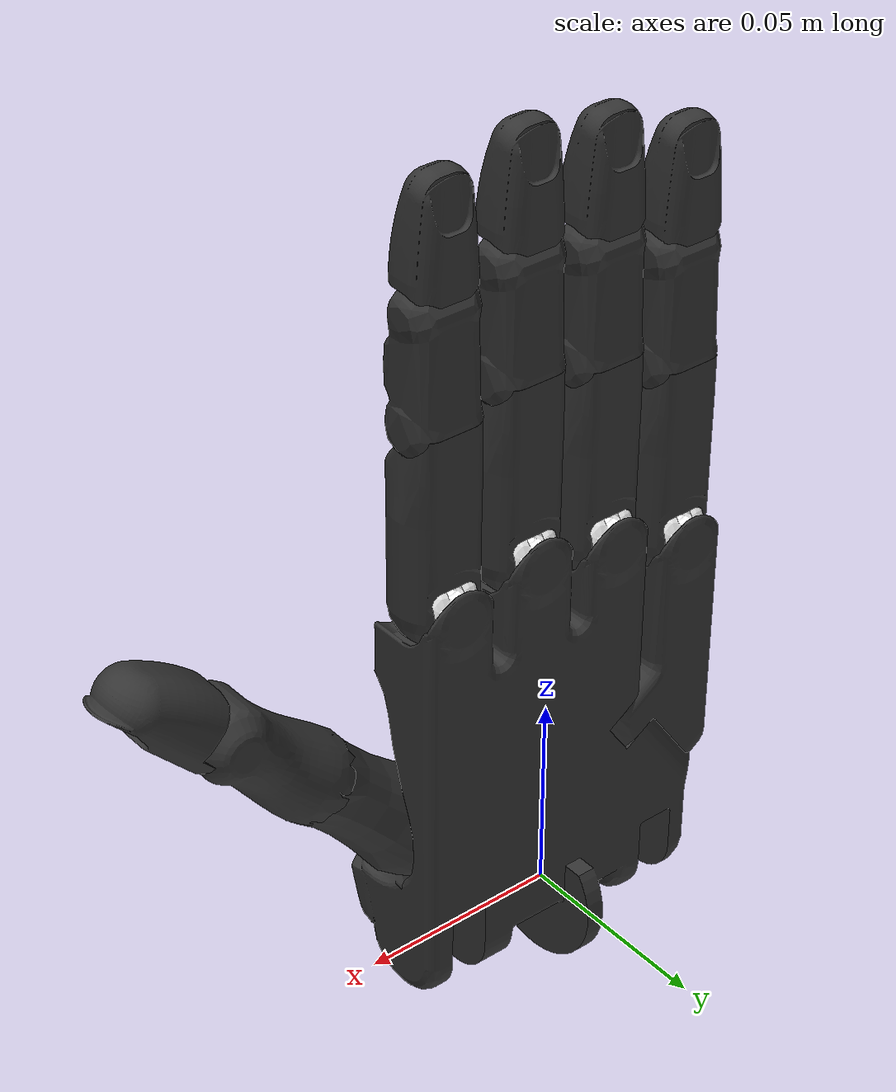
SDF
<sdf version='1.11'>
  <model name='rh_palm'>
    <link name='rh_palm'>
      <inertial>
        <pose>0.0021985926981499858 -0.00091810055905640667 0.033778046718497323 0 0 0</pose>
        <mass>0.50768530368804932</mass>
        <inertia>
          <ixx>0.0005297141669815264</ixx>
          <ixy>1.5709140684531199e-06</ixy>
          <ixz>-1.4715698817304041e-05</ixz>
          <iyy>0.00077459366012883556</iyy>
          <iyz>-1.258002557937628e-05</iyz>
          <izz>0.00029222616847752152</izz>
        </inertia>
      </inertial>
      <collision name='rh_palm_fixed_joint_lump__Geom_1_collision'>
        <pose>0.01099999994039536 0.008500000461935997 0.037999998778104782 0 0 0</pose>
        <geometry>
          <box>
            <size>0.061999998986721039 0.0070000002160668373 0.097999997437000275</size>
          </box>
        </geometry>
      </collision>
      <collision name='rh_palm_fixed_joint_lump__Geom_2_collision_1'>
        <pose>-0.002000000094994903 -0.0035000001080334191 0.037999998778104782 0 0 0</pose>
        <geometry>
          <box>
            <size>0.035999998450279243 0.017000000923871991 0.097999997437000275</size>
          </box>
        </geometry>
      </collision>
      <collision name='rh_palm_fixed_joint_lump__Geom_3_collision_2'>
        <pose>0.02899999916553497 -0.0035000001080334191 0.082000002264976501 0 0 0</pose>
        <geometry>
          <box>
            <size>0.0260000005364418 0.017000000923871991 0.0099999997764825821</size>
          </box>
        </geometry>
      </collision>
      <collision name='rh_palm_fixed_joint_lump__Geom_4_collision_3'>
        <pose>0.026499999687075611 -0.0010000000474974511 0.070000000298023224 0.19999998807907099 -3.2558588720921218e-08 0.25000017881393433</pose>
        <geometry>
          <box>
            <size>0.0260000005364418 0.014000000432133669 0.017999999225139621</size>
          </box>
        </geometry>
      </collision>
      <collision name='rh_palm_fixed_joint_lump__Geom_5_collision_4'>
        <pose>0.031500000506639481 -0.008500000461935997 0.0010000000474974511 0 0 0</pose>
        <geometry>
          <box>
            <size>0.020999999716877941 0.02700000070035458 0.02400000020861626</size>
          </box>
        </geometry>
      </collision>
      <collision name='rh_palm_fixed_joint_lump__Geom_6_collision_5'>
        <pose>0.01250000018626451 -0.01499999966472387 0.0040000001899898052 0 0 -0.48000070452690119</pose>
        <geometry>
          <box>
            <size>0.02199999988079071 0.004999999888241291 0.02999999932944775</size>
          </box>
        </geometry>
      </collision>
      <collision name='rh_palm_fixed_joint_lump__Geom_7_collision_6'>
        <pose>0.01099999994039536 0 0.089000001549720764 0 0 0</pose>
        <geometry>
          <box>
            <size>0.017999999225139621 0.02400000020861626 0.0040000001899898052</size>
          </box>
        </geometry>
      </collision>
      <collision name='rh_palm_fixed_joint_lump__Geom_8_collision_7'>
        <pose>-0.02999999932944775 0 0.008999999612569809 0 0 0</pose>
        <geometry>
          <box>
            <size>0.019999999552965161 0.02400000020861626 0.039999999105930328</size>
          </box>
        </geometry>
      </collision>
      <visual name='rh_palm_fixed_joint_lump__Geom_0_visual'>
        <pose>0.0053744451142847538 -0.0022442906629294161 0.032012943178415298 0.21004581451416021 0.083132773637771634 1.5503211021423342</pose>
        <geometry>
          <mesh>
            <scale>1 1 1</scale>
            <uri>./assets/obj/r_palm.obj</uri>
          </mesh>
        </geometry>
        <material>
          <diffuse>0.204437509 0.204437509 0.204437509 1</diffuse>
          <ambient>0.204437509 0.204437509 0.204437509 1</ambient>
        </material>
      </visual>
    </link>
    <joint name='rh_FFJ4' type='revolute'>
      <pose relative_to='rh_palm'>0.032999999821186073 0 0.094999998807907104 0 0 0</pose>
      <parent>rh_palm</parent>
      <child>rh_ffknuckle</child>
      <axis>
        <xyz>0 -1 0</xyz>
        <limit>
          <lower>-0.34906598925590521</lower>
          <upper>0.34906598925590521</upper>
          <effort>1000</effort>
          <velocity>1000</velocity>
        </limit>
        <dynamics>
          <spring_reference>0</spring_reference>
          <spring_stiffness>0</spring_stiffness>
        </dynamics>
      </axis>
    </joint>
    <link name='rh_ffknuckle'>
      <pose relative_to='rh_FFJ4'>0 0 0 0 0 0</pose>
      <inertial>
        <pose>0 0 0 0 0 0</pose>
        <mass>0.0080000003799796104</mass>
        <inertia>
          <ixx>2.6000000730164169e-07</ixx>
          <ixy>0</ixy>
          <ixz>0</ixz>
          <iyy>2.6000000730164169e-07</iyy>
          <iyz>0</iyz>
          <izz>3.1999999805520929e-07</izz>
        </inertia>
      </inertial>
      <collision name='rh_ffknuckle_fixed_joint_lump__Geom_11_collision'>
        <pose>0 0 0 0 1.5707963267948966 0</pose>
        <geometry>
          <cylinder>
            <length>0.017999999225139621</length>
            <radius>0.008999999612569809</radius>
          </cylinder>
        </geometry>
      </collision>
      <visual name='rh_ffknuckle_fixed_joint_lump__Geom_10_visual'>
        <pose>-8.0159534263657406e-06 0.00028383333119563758 0.0003141145571134984 0.47617125511169428 0 0</pose>
        <geometry>
          <mesh>
            <scale>1 1 1</scale>
            <uri>./assets/obj/f_knuckle.obj</uri>
          </mesh>
        </geometry>
        <material>
          <diffuse>1 1 1 1</diffuse>
          <ambient>1 1 1 1</ambient>
        </material>
      </visual>
    </link>
    <joint name='rh_FFJ3' type='revolute'>
      <pose relative_to='rh_ffknuckle'>0 0 0 0 0 0</pose>
      <parent>rh_ffknuckle</parent>
      <child>rh_ffproximal</child>
      <axis>
        <xyz>1 0 0</xyz>
        <limit>
          <lower>-0.26179900765419012</lower>
          <upper>1.5708000659942629</upper>
          <effort>1000</effort>
          <velocity>1000</velocity>
        </limit>
        <dynamics>
          <spring_reference>0</spring_reference>
          <spring_stiffness>0</spring_stiffness>
        </dynamics>
      </axis>
    </joint>
    <link name='rh_ffproximal'>
      <pose relative_to='rh_FFJ3'>0 0 0 0 0 0</pose>
      <inertial>
        <pose>0 0 0.022500000894069672 0 0 0</pose>
        <mass>0.02999999932944775</mass>
        <inertia>
          <ixx>9.8000000434694812e-06</ixx>
          <ixy>0</ixy>
          <ixz>0</ixz>
          <iyy>9.9999997473787516e-06</iyy>
          <iyz>0</iyz>
          <izz>1.799999949980702e-06</izz>
        </inertia>
      </inertial>
      <collision name='rh_ffproximal_fixed_joint_lump__Geom_13_collision'>
        <pose>0 0 0.02500000037252903 0 0 0</pose>
        <geometry>
          <cylinder>
            <length>0.039999999105930328</length>
            <radius>0.008999999612569809</radius>
          </cylinder>
        </geometry>
      </collision>
      <visual name='rh_ffproximal_fixed_joint_lump__Geom_12_visual'>
        <pose>1.2104840152460379e-06 9.7617894425638951e-06 0.022880652919411659 -8.674230925925565e-19 0.011893937364220619 1.5707963705062868</pose>
        <geometry>
          <mesh>
            <scale>1 1 1</scale>
            <uri>./assets/obj/f_proximal.obj</uri>
          </mesh>
        </geometry>
        <material>
          <diffuse>0.204437509 0.204437509 0.204437509 1</diffuse>
          <ambient>0.204437509 0.204437509 0.204437509 1</ambient>
        </material>
      </visual>
    </link>
    <joint name='rh_FFJ2' type='revolute'>
      <pose relative_to='rh_ffproximal'>0 0 0.045000001788139343 0 0 0</pose>
      <parent>rh_ffproximal</parent>
      <child>rh_ffmiddle</child>
      <axis>
        <xyz>1 0 0</xyz>
        <limit>
          <lower>0</lower>
          <upper>1.5708000659942629</upper>
          <effort>1000</effort>
          <velocity>1000</velocity>
        </limit>
        <dynamics>
          <spring_reference>0</spring_reference>
          <spring_stiffness>0</spring_stiffness>
        </dynamics>
      </axis>
    </joint>
    <link name='rh_ffmiddle'>
      <pose relative_to='rh_FFJ2'>0 0 0 0 0 0</pose>
      <inertial>
        <pose>0 0 0.01250000018626451 0 0 0</pose>
        <mass>0.017000000923871991</mass>
        <inertia>
          <ixx>2.600000016172999e-06</ixx>
          <ixy>0</ixy>
          <ixz>0</ixz>
          <iyy>2.7000000955013088e-06</iyy>
          <iyz>0</iyz>
          <izz>8.7000000803527655e-07</izz>
        </inertia>
      </inertial>
      <collision name='rh_ffmiddle_fixed_joint_lump__Geom_15_collision'>
        <pose>0 0 0.01250000018626451 0 0 0</pose>
        <geometry>
          <cylinder>
            <length>0.02500000037252903</length>
            <radius>0.008999999612569809</radius>
          </cylinder>
        </geometry>
      </collision>
      <visual name='rh_ffmiddle_fixed_joint_lump__Geom_14_visual'>
        <pose>-2.7197006602364131e-06 -3.2192867365665727e-05 0.011511409655213359 0 0 1.5707963705062871</pose>
        <geometry>
          <mesh>
            <scale>1 1 1</scale>
            <uri>./assets/obj/f_middle.obj</uri>
          </mesh>
        </geometry>
        <material>
          <diffuse>0.204437509 0.204437509 0.204437509 1</diffuse>
          <ambient>0.204437509 0.204437509 0.204437509 1</ambient>
        </material>
      </visual>
    </link>
    <joint name='rh_FFJ1' type='revolute'>
      <pose relative_to='rh_ffmiddle'>0 0 0.02500000037252903 0 0 0</pose>
      <parent>rh_ffmiddle</parent>
      <child>rh_ffdistal</child>
      <axis>
        <xyz>1 0 0</xyz>
        <limit>
          <lower>0</lower>
          <upper>1.5708000659942629</upper>
          <effort>1000</effort>
          <velocity>1000</velocity>
        </limit>
        <dynamics>
          <spring_reference>0</spring_reference>
          <spring_stiffness>0</spring_stiffness>
        </dynamics>
      </axis>
    </joint>
    <link name='rh_ffdistal'>
      <pose relative_to='rh_FFJ1'>0 0 0 0 0 0</pose>
      <inertial>
        <pose>0 0 0.0130768995732069 0 0 0</pose>
        <mass>0.0130000002682209</mass>
        <inertia>
          <ixx>1.120920046560059e-06</ixx>
          <ixy>0</ixy>
          <ixz>0</ixz>
          <iyy>1.2809199461116801e-06</iyy>
          <iyz>0</iyz>
          <izz>5.3000002253611456e-07</izz>
        </inertia>
      </inertial>
      <collision name='rh_ffdistal_fixed_joint_lump__Geom_17_collision'>
        <pose>-2.3984401195775721e-05 0.00042073254007846122 0.01764647476375103 0 0 1.5707963705062871</pose>
        <geometry>
          <mesh>
            <scale>1 1 1</scale>
            <uri>./assets/stl/f_distal_pst.stl</uri>
          </mesh>
        </geometry>
      </collision>
      <visual name='rh_ffdistal_fixed_joint_lump__Geom_16_visual'>
        <pose>-2.3984401195775721e-05 0.00042073254007846122 0.01764647476375103 0 0 1.5707963705062871</pose>
        <geometry>
          <mesh>
            <scale>1 1 1</scale>
            <uri>./assets/obj/f_distal_pst.obj</uri>
          </mesh>
        </geometry>
        <material>
          <diffuse>0.204437509 0.204437509 0.204437509 1</diffuse>
          <ambient>0.204437509 0.204437509 0.204437509 1</ambient>
        </material>
      </visual>
    </link>
    <joint name='rh_LFJ5' type='revolute'>
      <pose relative_to='rh_palm'>-0.032999999821186073 0 0.020710000768303871 0 0 0</pose>
      <parent>rh_palm</parent>
      <child>rh_lfmetacarpal</child>
      <axis>
        <xyz>0.57357615232467651 0 0.81915223598480225</xyz>
        <limit>
          <lower>0</lower>
          <upper>0.78539800643920898</upper>
          <effort>1000</effort>
          <velocity>1000</velocity>
        </limit>
        <dynamics>
          <spring_reference>0</spring_reference>
          <spring_stiffness>0</spring_stiffness>
        </dynamics>
      </axis>
    </joint>
    <link name='rh_lfmetacarpal'>
      <pose relative_to='rh_LFJ5'>0 0 0 0 0 0</pose>
      <inertial>
        <pose>0 0 0.039999999105930328 0 0 0</pose>
        <mass>0.02999999932944775</mass>
        <inertia>
          <ixx>1.450000036129495e-05</ixx>
          <ixy>0</ixy>
          <ixz>0</ixz>
          <iyy>1.6379999578930441e-05</iyy>
          <iyz>0</iyz>
          <izz>4.2719998418760952e-06</izz>
        </inertia>
      </inertial>
      <collision name='rh_lfmetacarpal_fixed_joint_lump__Geom_35_collision'>
        <pose>0.002000000094994903 0 0.032999999821186073 0 0 0</pose>
        <geometry>
          <box>
            <size>0.02199999988079071 0.02400000020861626 0.05000000074505806</size>
          </box>
        </geometry>
      </collision>
      <visual name='rh_lfmetacarpal_fixed_joint_lump__Geom_34_visual'>
        <pose>0.0024777483195066452 0.00066233589313924313 0.036479774862527847 -0.23058989644050601 0.039690095931291539 1.549545049667358</pose>
        <geometry>
          <mesh>
            <scale>1 1 1</scale>
            <uri>./assets/obj/lf_metacarpal.obj</uri>
          </mesh>
        </geometry>
        <material>
          <diffuse>0.204437509 0.204437509 0.204437509 1</diffuse>
          <ambient>0.204437509 0.204437509 0.204437509 1</ambient>
        </material>
      </visual>
    </link>
    <joint name='rh_LFJ4' type='revolute'>
      <pose relative_to='rh_lfmetacarpal'>0 0 0.065789997577667236 0 0 0</pose>
      <parent>rh_lfmetacarpal</parent>
      <child>rh_lfknuckle</child>
      <axis>
        <xyz>0 1 0</xyz>
        <limit>
          <lower>-0.34906598925590521</lower>
          <upper>0.34906598925590521</upper>
          <effort>1000</effort>
          <velocity>1000</velocity>
        </limit>
        <dynamics>
          <spring_reference>0</spring_reference>
          <spring_stiffness>0</spring_stiffness>
        </dynamics>
      </axis>
    </joint>
    <link name='rh_lfknuckle'>
      <pose relative_to='rh_LFJ4'>0 0 0 0 0 0</pose>
      <inertial>
        <pose>0 0 0 0 0 0</pose>
        <mass>0.0080000003799796104</mass>
        <inertia>
          <ixx>2.6000000730164169e-07</ixx>
          <ixy>0</ixy>
          <ixz>0</ixz>
          <iyy>2.6000000730164169e-07</iyy>
          <iyz>0</iyz>
          <izz>3.1999999805520929e-07</izz>
        </inertia>
      </inertial>
      <collision name='rh_lfknuckle_fixed_joint_lump__Geom_37_collision'>
        <pose>0 0 0 0 1.5707963267948966 0</pose>
        <geometry>
          <cylinder>
            <length>0.017999999225139621</length>
            <radius>0.008999999612569809</radius>
          </cylinder>
        </geometry>
      </collision>
      <visual name='rh_lfknuckle_fixed_joint_lump__Geom_36_visual'>
        <pose>-8.0159534263657406e-06 0.00028383333119563758 0.0003141145571134984 0.47617125511169428 0 0</pose>
        <geometry>
          <mesh>
            <scale>1 1 1</scale>
            <uri>./assets/obj/f_knuckle.obj</uri>
          </mesh>
        </geometry>
        <material>
          <diffuse>1 1 1 1</diffuse>
          <ambient>1 1 1 1</ambient>
        </material>
      </visual>
    </link>
    <joint name='rh_LFJ3' type='revolute'>
      <pose relative_to='rh_lfknuckle'>0 0 0 0 0 0</pose>
      <parent>rh_lfknuckle</parent>
      <child>rh_lfproximal</child>
      <axis>
        <xyz>1 0 0</xyz>
        <limit>
          <lower>-0.26179900765419012</lower>
          <upper>1.5708000659942629</upper>
          <effort>1000</effort>
          <velocity>1000</velocity>
        </limit>
        <dynamics>
          <spring_reference>0</spring_reference>
          <spring_stiffness>0</spring_stiffness>
        </dynamics>
      </axis>
    </joint>
    <link name='rh_lfproximal'>
      <pose relative_to='rh_LFJ3'>0 0 0 0 0 0</pose>
      <inertial>
        <pose>0 0 0.022500000894069672 0 0 0</pose>
        <mass>0.02999999932944775</mass>
        <inertia>
          <ixx>9.8000000434694812e-06</ixx>
          <ixy>0</ixy>
          <ixz>0</ixz>
          <iyy>9.9999997473787516e-06</iyy>
          <iyz>0</iyz>
          <izz>1.799999949980702e-06</izz>
        </inertia>
      </inertial>
      <collision name='rh_lfproximal_fixed_joint_lump__Geom_39_collision'>
        <pose>0 0 0.02500000037252903 0 0 0</pose>
        <geometry>
          <cylinder>
            <length>0.039999999105930328</length>
            <radius>0.008999999612569809</radius>
          </cylinder>
        </geometry>
      </collision>
      <visual name='rh_lfproximal_fixed_joint_lump__Geom_38_visual'>
        <pose>1.2104840152460379e-06 9.7617894425638951e-06 0.022880652919411659 -8.674230925925565e-19 0.011893937364220619 1.5707963705062868</pose>
        <geometry>
          <mesh>
            <scale>1 1 1</scale>
            <uri>./assets/obj/f_proximal.obj</uri>
          </mesh>
        </geometry>
        <material>
          <diffuse>0.204437509 0.204437509 0.204437509 1</diffuse>
          <ambient>0.204437509 0.204437509 0.204437509 1</ambient>
        </material>
      </visual>
    </link>
    <joint name='rh_LFJ2' type='revolute'>
      <pose relative_to='rh_lfproximal'>0 0 0.045000001788139343 0 0 0</pose>
      <parent>rh_lfproximal</parent>
      <child>rh_lfmiddle</child>
      <axis>
        <xyz>1 0 0</xyz>
        <limit>
          <lower>0</lower>
          <upper>1.5708000659942629</upper>
          <effort>1000</effort>
          <velocity>1000</velocity>
        </limit>
        <dynamics>
          <spring_reference>0</spring_reference>
          <spring_stiffness>0</spring_stiffness>
        </dynamics>
      </axis>
    </joint>
    <link name='rh_lfmiddle'>
      <pose relative_to='rh_LFJ2'>0 0 0 0 0 0</pose>
      <inertial>
        <pose>0 0 0.01250000018626451 0 0 0</pose>
        <mass>0.017000000923871991</mass>
        <inertia>
          <ixx>2.600000016172999e-06</ixx>
          <ixy>0</ixy>
          <ixz>0</ixz>
          <iyy>2.7000000955013088e-06</iyy>
          <iyz>0</iyz>
          <izz>8.7000000803527655e-07</izz>
        </inertia>
      </inertial>
      <collision name='rh_lfmiddle_fixed_joint_lump__Geom_41_collision'>
        <pose>0 0 0.01250000018626451 0 0 0</pose>
        <geometry>
          <cylinder>
            <length>0.02500000037252903</length>
            <radius>0.008999999612569809</radius>
          </cylinder>
        </geometry>
      </collision>
      <visual name='rh_lfmiddle_fixed_joint_lump__Geom_40_visual'>
        <pose>-2.7197006602364131e-06 -3.2192867365665727e-05 0.011511409655213359 0 0 1.5707963705062871</pose>
        <geometry>
          <mesh>
            <scale>1 1 1</scale>
            <uri>./assets/obj/f_middle.obj</uri>
          </mesh>
        </geometry>
        <material>
          <diffuse>0.204437509 0.204437509 0.204437509 1</diffuse>
          <ambient>0.204437509 0.204437509 0.204437509 1</ambient>
        </material>
      </visual>
    </link>
    <joint name='rh_LFJ1' type='revolute'>
      <pose relative_to='rh_lfmiddle'>0 0 0.02500000037252903 0 0 0</pose>
      <parent>rh_lfmiddle</parent>
      <child>rh_lfdistal</child>
      <axis>
        <xyz>1 0 0</xyz>
        <limit>
          <lower>0</lower>
          <upper>1.5708000659942629</upper>
          <effort>1000</effort>
          <velocity>1000</velocity>
        </limit>
        <dynamics>
          <spring_reference>0</spring_reference>
          <spring_stiffness>0</spring_stiffness>
        </dynamics>
      </axis>
    </joint>
    <link name='rh_lfdistal'>
      <pose relative_to='rh_LFJ1'>0 0 0 0 0 0</pose>
      <inertial>
        <pose>0 0 0.0130768995732069 0 0 0</pose>
        <mass>0.0130000002682209</mass>
        <inertia>
          <ixx>1.120920046560059e-06</ixx>
          <ixy>0</ixy>
          <ixz>0</ixz>
          <iyy>1.2809199461116801e-06</iyy>
          <iyz>0</iyz>
          <izz>5.3000002253611456e-07</izz>
        </inertia>
      </inertial>
      <collision name='rh_lfdistal_fixed_joint_lump__Geom_43_collision'>
        <pose>-2.3984401195775721e-05 0.00042073254007846122 0.01764647476375103 0 0 1.5707963705062871</pose>
        <geometry>
          <mesh>
            <scale>1 1 1</scale>
            <uri>./assets/stl/f_distal_pst.stl</uri>
          </mesh>
        </geometry>
      </collision>
      <visual name='rh_lfdistal_fixed_joint_lump__Geom_42_visual'>
        <pose>-2.3984401195775721e-05 0.00042073254007846122 0.01764647476375103 0 0 1.5707963705062871</pose>
        <geometry>
          <mesh>
            <scale>1 1 1</scale>
            <uri>./assets/obj/f_distal_pst.obj</uri>
          </mesh>
        </geometry>
        <material>
          <diffuse>0.204437509 0.204437509 0.204437509 1</diffuse>
          <ambient>0.204437509 0.204437509 0.204437509 1</ambient>
        </material>
      </visual>
    </link>
    <joint name='rh_MFJ4' type='revolute'>
      <pose relative_to='rh_palm'>0.01099999994039536 0 0.098999999463558197 0 0 0</pose>
      <parent>rh_palm</parent>
      <child>rh_mfknuckle</child>
      <axis>
        <xyz>0 -1 0</xyz>
        <limit>
          <lower>-0.34906598925590521</lower>
          <upper>0.34906598925590521</upper>
          <effort>1000</effort>
          <velocity>1000</velocity>
        </limit>
        <dynamics>
          <spring_reference>0</spring_reference>
          <spring_stiffness>0</spring_stiffness>
        </dynamics>
      </axis>
    </joint>
    <link name='rh_mfknuckle'>
      <pose relative_to='rh_MFJ4'>0 0 0 0 0 0</pose>
      <inertial>
        <pose>0 0 0 0 0 0</pose>
        <mass>0.0080000003799796104</mass>
        <inertia>
          <ixx>2.6000000730164169e-07</ixx>
          <ixy>0</ixy>
          <ixz>0</ixz>
          <iyy>2.6000000730164169e-07</iyy>
          <iyz>0</iyz>
          <izz>3.1999999805520929e-07</izz>
        </inertia>
      </inertial>
      <collision name='rh_mfknuckle_fixed_joint_lump__Geom_19_collision'>
        <pose>0 0 0 0 1.5707963267948966 0</pose>
        <geometry>
          <cylinder>
            <length>0.017999999225139621</length>
            <radius>0.008999999612569809</radius>
          </cylinder>
        </geometry>
      </collision>
      <visual name='rh_mfknuckle_fixed_joint_lump__Geom_18_visual'>
        <pose>-8.0159534263657406e-06 0.00028383333119563758 0.0003141145571134984 0.47617125511169428 0 0</pose>
        <geometry>
          <mesh>
            <scale>1 1 1</scale>
            <uri>./assets/obj/f_knuckle.obj</uri>
          </mesh>
        </geometry>
        <material>
          <diffuse>1 1 1 1</diffuse>
          <ambient>1 1 1 1</ambient>
        </material>
      </visual>
    </link>
    <joint name='rh_MFJ3' type='revolute'>
      <pose relative_to='rh_mfknuckle'>0 0 0 0 0 0</pose>
      <parent>rh_mfknuckle</parent>
      <child>rh_mfproximal</child>
      <axis>
        <xyz>1 0 0</xyz>
        <limit>
          <lower>-0.26179900765419012</lower>
          <upper>1.5708000659942629</upper>
          <effort>1000</effort>
          <velocity>1000</velocity>
        </limit>
        <dynamics>
          <spring_reference>0</spring_reference>
          <spring_stiffness>0</spring_stiffness>
        </dynamics>
      </axis>
    </joint>
    <link name='rh_mfproximal'>
      <pose relative_to='rh_MFJ3'>0 0 0 0 0 0</pose>
      <inertial>
        <pose>0 0 0.022500000894069672 0 0 0</pose>
        <mass>0.02999999932944775</mass>
        <inertia>
          <ixx>9.8000000434694812e-06</ixx>
          <ixy>0</ixy>
          <ixz>0</ixz>
          <iyy>9.9999997473787516e-06</iyy>
          <iyz>0</iyz>
          <izz>1.799999949980702e-06</izz>
        </inertia>
      </inertial>
      <collision name='rh_mfproximal_fixed_joint_lump__Geom_21_collision'>
        <pose>0 0 0.02500000037252903 0 0 0</pose>
        <geometry>
          <cylinder>
            <length>0.039999999105930328</length>
            <radius>0.008999999612569809</radius>
          </cylinder>
        </geometry>
      </collision>
      <visual name='rh_mfproximal_fixed_joint_lump__Geom_20_visual'>
        <pose>1.2104840152460379e-06 9.7617894425638951e-06 0.022880652919411659 -8.674230925925565e-19 0.011893937364220619 1.5707963705062868</pose>
        <geometry>
          <mesh>
            <scale>1 1 1</scale>
            <uri>./assets/obj/f_proximal.obj</uri>
          </mesh>
        </geometry>
        <material>
          <diffuse>0.204437509 0.204437509 0.204437509 1</diffuse>
          <ambient>0.204437509 0.204437509 0.204437509 1</ambient>
        </material>
      </visual>
    </link>
    <joint name='rh_MFJ2' type='revolute'>
      <pose relative_to='rh_mfproximal'>0 0 0.045000001788139343 0 0 0</pose>
      <parent>rh_mfproximal</parent>
      <child>rh_mfmiddle</child>
      <axis>
        <xyz>1 0 0</xyz>
        <limit>
          <lower>0</lower>
          <upper>1.5708000659942629</upper>
          <effort>1000</effort>
          <velocity>1000</velocity>
        </limit>
        <dynamics>
          <spring_reference>0</spring_reference>
          <spring_stiffness>0</spring_stiffness>
        </dynamics>
      </axis>
    </joint>
    <link name='rh_mfmiddle'>
      <pose relative_to='rh_MFJ2'>0 0 0 0 0 0</pose>
      <inertial>
        <pose>0 0 0.01250000018626451 0 0 0</pose>
        <mass>0.017000000923871991</mass>
        <inertia>
          <ixx>2.600000016172999e-06</ixx>
          <ixy>0</ixy>
          <ixz>0</ixz>
          <iyy>2.7000000955013088e-06</iyy>
          <iyz>0</iyz>
          <izz>8.7000000803527655e-07</izz>
        </inertia>
      </inertial>
      <collision name='rh_mfmiddle_fixed_joint_lump__Geom_23_collision'>
        <pose>0 0 0.01250000018626451 0 0 0</pose>
        <geometry>
          <cylinder>
            <length>0.02500000037252903</length>
            <radius>0.008999999612569809</radius>
          </cylinder>
        </geometry>
      </collision>
      <visual name='rh_mfmiddle_fixed_joint_lump__Geom_22_visual'>
        <pose>-2.7197006602364131e-06 -3.2192867365665727e-05 0.011511409655213359 0 0 1.5707963705062871</pose>
        <geometry>
          <mesh>
            <scale>1 1 1</scale>
            <uri>./assets/obj/f_middle.obj</uri>
          </mesh>
        </geometry>
        <material>
          <diffuse>0.204437509 0.204437509 0.204437509 1</diffuse>
          <ambient>0.204437509 0.204437509 0.204437509 1</ambient>
        </material>
      </visual>
    </link>
    <joint name='rh_MFJ1' type='revolute'>
      <pose relative_to='rh_mfmiddle'>0 0 0.02500000037252903 0 0 0</pose>
      <parent>rh_mfmiddle</parent>
      <child>rh_mfdistal</child>
      <axis>
        <xyz>1 0 0</xyz>
        <limit>
          <lower>0</lower>
          <upper>1.5708000659942629</upper>
          <effort>1000</effort>
          <velocity>1000</velocity>
        </limit>
        <dynamics>
          <spring_reference>0</spring_reference>
          <spring_stiffness>0</spring_stiffness>
        </dynamics>
      </axis>
    </joint>
    <link name='rh_mfdistal'>
      <pose relative_to='rh_MFJ1'>0 0 0 0 0 0</pose>
      <inertial>
        <pose>0 0 0.0130768995732069 0 0 0</pose>
        <mass>0.0130000002682209</mass>
        <inertia>
          <ixx>1.120920046560059e-06</ixx>
          <ixy>0</ixy>
          <ixz>0</ixz>
          <iyy>1.2809199461116801e-06</iyy>
          <iyz>0</iyz>
          <izz>5.3000002253611456e-07</izz>
        </inertia>
      </inertial>
      <collision name='rh_mfdistal_fixed_joint_lump__Geom_25_collision'>
        <pose>-2.3984401195775721e-05 0.00042073254007846122 0.01764647476375103 0 0 1.5707963705062871</pose>
        <geometry>
          <mesh>
            <scale>1 1 1</scale>
            <uri>./assets/stl/f_distal_pst.stl</uri>
          </mesh>
        </geometry>
      </collision>
      <visual name='rh_mfdistal_fixed_joint_lump__Geom_24_visual'>
        <pose>-2.3984401195775721e-05 0.00042073254007846122 0.01764647476375103 0 0 1.5707963705062871</pose>
        <geometry>
          <mesh>
            <scale>1 1 1</scale>
            <uri>./assets/obj/f_distal_pst.obj</uri>
          </mesh>
        </geometry>
        <material>
          <diffuse>0.204437509 0.204437509 0.204437509 1</diffuse>
          <ambient>0.204437509 0.204437509 0.204437509 1</ambient>
        </material>
      </visual>
    </link>
    <joint name='rh_RFJ4' type='revolute'>
      <pose relative_to='rh_palm'>-0.01099999994039536 0 0.094999998807907104 0 0 0</pose>
      <parent>rh_palm</parent>
      <child>rh_rfknuckle</child>
      <axis>
        <xyz>0 1 0</xyz>
        <limit>
          <lower>-0.34906598925590521</lower>
          <upper>0.34906598925590521</upper>
          <effort>1000</effort>
          <velocity>1000</velocity>
        </limit>
        <dynamics>
          <spring_reference>0</spring_reference>
          <spring_stiffness>0</spring_stiffness>
        </dynamics>
      </axis>
    </joint>
    <link name='rh_rfknuckle'>
      <pose relative_to='rh_RFJ4'>0 0 0 0 0 0</pose>
      <inertial>
        <pose>0 0 0 0 0 0</pose>
        <mass>0.0080000003799796104</mass>
        <inertia>
          <ixx>2.6000000730164169e-07</ixx>
          <ixy>0</ixy>
          <ixz>0</ixz>
          <iyy>2.6000000730164169e-07</iyy>
          <iyz>0</iyz>
          <izz>3.1999999805520929e-07</izz>
        </inertia>
      </inertial>
      <collision name='rh_rfknuckle_fixed_joint_lump__Geom_27_collision'>
        <pose>0 0 0 0 1.5707963267948966 0</pose>
        <geometry>
          <cylinder>
            <length>0.017999999225139621</length>
            <radius>0.008999999612569809</radius>
          </cylinder>
        </geometry>
      </collision>
      <visual name='rh_rfknuckle_fixed_joint_lump__Geom_26_visual'>
        <pose>-8.0159534263657406e-06 0.00028383333119563758 0.0003141145571134984 0.47617125511169428 0 0</pose>
        <geometry>
          <mesh>
            <scale>1 1 1</scale>
            <uri>./assets/obj/f_knuckle.obj</uri>
          </mesh>
        </geometry>
        <material>
          <diffuse>1 1 1 1</diffuse>
          <ambient>1 1 1 1</ambient>
        </material>
      </visual>
    </link>
    <joint name='rh_RFJ3' type='revolute'>
      <pose relative_to='rh_rfknuckle'>0 0 0 0 0 0</pose>
      <parent>rh_rfknuckle</parent>
      <child>rh_rfproximal</child>
      <axis>
        <xyz>1 0 0</xyz>
        <limit>
          <lower>-0.26179900765419012</lower>
          <upper>1.5708000659942629</upper>
          <effort>1000</effort>
          <velocity>1000</velocity>
        </limit>
        <dynamics>
          <spring_reference>0</spring_reference>
          <spring_stiffness>0</spring_stiffness>
        </dynamics>
      </axis>
    </joint>
    <link name='rh_rfproximal'>
      <pose relative_to='rh_RFJ3'>0 0 0 0 0 0</pose>
      <inertial>
        <pose>0 0 0.022500000894069672 0 0 0</pose>
        <mass>0.02999999932944775</mass>
        <inertia>
          <ixx>9.8000000434694812e-06</ixx>
          <ixy>0</ixy>
          <ixz>0</ixz>
          <iyy>9.9999997473787516e-06</iyy>
          <iyz>0</iyz>
          <izz>1.799999949980702e-06</izz>
        </inertia>
      </inertial>
      <collision name='rh_rfproximal_fixed_joint_lump__Geom_29_collision'>
        <pose>0 0 0.02500000037252903 0 0 0</pose>
        <geometry>
          <cylinder>
            <length>0.039999999105930328</length>
            <radius>0.008999999612569809</radius>
          </cylinder>
        </geometry>
      </collision>
      <visual name='rh_rfproximal_fixed_joint_lump__Geom_28_visual'>
        <pose>1.2104840152460379e-06 9.7617894425638951e-06 0.022880652919411659 -8.674230925925565e-19 0.011893937364220619 1.5707963705062868</pose>
        <geometry>
          <mesh>
            <scale>1 1 1</scale>
            <uri>./assets/obj/f_proximal.obj</uri>
          </mesh>
        </geometry>
        <material>
          <diffuse>0.204437509 0.204437509 0.204437509 1</diffuse>
          <ambient>0.204437509 0.204437509 0.204437509 1</ambient>
        </material>
      </visual>
    </link>
    <joint name='rh_RFJ2' type='revolute'>
      <pose relative_to='rh_rfproximal'>0 0 0.045000001788139343 0 0 0</pose>
      <parent>rh_rfproximal</parent>
      <child>rh_rfmiddle</child>
      <axis>
        <xyz>1 0 0</xyz>
        <limit>
          <lower>0</lower>
          <upper>1.5708000659942629</upper>
          <effort>1000</effort>
          <velocity>1000</velocity>
        </limit>
        <dynamics>
          <spring_reference>0</spring_reference>
          <spring_stiffness>0</spring_stiffness>
        </dynamics>
      </axis>
    </joint>
    <link name='rh_rfmiddle'>
      <pose relative_to='rh_RFJ2'>0 0 0 0 0 0</pose>
      <inertial>
        <pose>0 0 0.01250000018626451 0 0 0</pose>
        <mass>0.017000000923871991</mass>
        <inertia>
          <ixx>2.600000016172999e-06</ixx>
          <ixy>0</ixy>
          <ixz>0</ixz>
          <iyy>2.7000000955013088e-06</iyy>
          <iyz>0</iyz>
          <izz>8.7000000803527655e-07</izz>
        </inertia>
      </inertial>
      <collision name='rh_rfmiddle_fixed_joint_lump__Geom_31_collision'>
        <pose>0 0 0.01250000018626451 0 0 0</pose>
        <geometry>
          <cylinder>
            <length>0.02500000037252903</length>
            <radius>0.008999999612569809</radius>
          </cylinder>
        </geometry>
      </collision>
      <visual name='rh_rfmiddle_fixed_joint_lump__Geom_30_visual'>
        <pose>-2.7197006602364131e-06 -3.2192867365665727e-05 0.011511409655213359 0 0 1.5707963705062871</pose>
        <geometry>
          <mesh>
            <scale>1 1 1</scale>
            <uri>./assets/obj/f_middle.obj</uri>
          </mesh>
        </geometry>
        <material>
          <diffuse>0.204437509 0.204437509 0.204437509 1</diffuse>
          <ambient>0.204437509 0.204437509 0.204437509 1</ambient>
        </material>
      </visual>
    </link>
    <joint name='rh_RFJ1' type='revolute'>
      <pose relative_to='rh_rfmiddle'>0 0 0.02500000037252903 0 0 0</pose>
      <parent>rh_rfmiddle</parent>
      <child>rh_rfdistal</child>
      <axis>
        <xyz>1 0 0</xyz>
        <limit>
          <lower>0</lower>
          <upper>1.5708000659942629</upper>
          <effort>1000</effort>
          <velocity>1000</velocity>
        </limit>
        <dynamics>
          <spring_reference>0</spring_reference>
          <spring_stiffness>0</spring_stiffness>
        </dynamics>
      </axis>
    </joint>
    <link name='rh_rfdistal'>
      <pose relative_to='rh_RFJ1'>0 0 0 0 0 0</pose>
      <inertial>
        <pose>0 0 0.0130768995732069 0 0 0</pose>
        <mass>0.0130000002682209</mass>
        <inertia>
          <ixx>1.120920046560059e-06</ixx>
          <ixy>0</ixy>
          <ixz>0</ixz>
          <iyy>1.2809199461116801e-06</iyy>
          <iyz>0</iyz>
          <izz>5.3000002253611456e-07</izz>
        </inertia>
      </inertial>
      <collision name='rh_rfdistal_fixed_joint_lump__Geom_33_collision'>
        <pose>-2.3984401195775721e-05 0.00042073254007846122 0.01764647476375103 0 0 1.5707963705062871</pose>
        <geometry>
          <mesh>
            <scale>1 1 1</scale>
            <uri>./assets/stl/f_distal_pst.stl</uri>
          </mesh>
        </geometry>
      </collision>
      <visual name='rh_rfdistal_fixed_joint_lump__Geom_32_visual'>
        <pose>-2.3984401195775721e-05 0.00042073254007846122 0.01764647476375103 0 0 1.5707963705062871</pose>
        <geometry>
          <mesh>
            <scale>1 1 1</scale>
            <uri>./assets/obj/f_distal_pst.obj</uri>
          </mesh>
        </geometry>
        <material>
          <diffuse>0.204437509 0.204437509 0.204437509 1</diffuse>
          <ambient>0.204437509 0.204437509 0.204437509 1</ambient>
        </material>
      </visual>
    </link>
    <joint name='rh_THJ5' type='revolute'>
      <pose relative_to='rh_palm'>0.034000001847743988 -0.008580000139772892 0.02899999916553497 0 0.78539699316024802 0</pose>
      <parent>rh_palm</parent>
      <child>rh_thbase</child>
      <axis>
        <xyz>0 0 -1</xyz>
        <limit>
          <lower>-1.047199964523315</lower>
          <upper>1.047199964523315</upper>
          <effort>1000</effort>
          <velocity>1000</velocity>
        </limit>
        <dynamics>
          <spring_reference>0</spring_reference>
          <spring_stiffness>0</spring_stiffness>
        </dynamics>
      </axis>
    </joint>
    <link name='rh_thbase'>
      <pose relative_to='rh_THJ5'>0 0 0 0 0 0</pose>
      <inertial>
        <pose>0 0 0 0 0 0</pose>
        <mass>0.0099999997764825821</mass>
        <inertia>
          <ixx>1.5999999902760459e-07</ixx>
          <ixy>0</ixy>
          <ixz>0</ixz>
          <iyy>1.5999999902760459e-07</iyy>
          <iyz>0</iyz>
          <izz>1.5999999902760459e-07</izz>
        </inertia>
      </inertial>
      <collision name='rh_thbase_fixed_joint_lump__Geom_44_collision'>
        <pose>0 0 0 0 0 0</pose>
        <geometry>
          <sphere>
            <radius>0.0130000002682209</radius>
          </sphere>
        </geometry>
      </collision>
    </link>
    <joint name='rh_THJ4' type='revolute'>
      <pose relative_to='rh_thbase'>0 0 0 0 0 0</pose>
      <parent>rh_thbase</parent>
      <child>rh_thproximal</child>
      <axis>
        <xyz>1 0 0</xyz>
        <limit>
          <lower>0</lower>
          <upper>1.22172999382019</upper>
          <effort>1000</effort>
          <velocity>1000</velocity>
        </limit>
        <dynamics>
          <spring_reference>0</spring_reference>
          <spring_stiffness>0</spring_stiffness>
        </dynamics>
      </axis>
    </joint>
    <link name='rh_thproximal'>
      <pose relative_to='rh_THJ4'>0 0 0 0 0 0</pose>
      <inertial>
        <pose>0 0 0.018999999389052391 0 0 0</pose>
        <mass>0.039999999105930328</mass>
        <inertia>
          <ixx>1.3599999874713831e-05</ixx>
          <ixy>0</ixy>
          <ixz>0</ixz>
          <iyy>1.3599999874713831e-05</iyy>
          <iyz>0</iyz>
          <izz>3.130000095552532e-06</izz>
        </inertia>
      </inertial>
      <collision name='rh_thproximal_fixed_joint_lump__Geom_46_collision'>
        <pose>0 0 0.019999999552965161 0 0 0</pose>
        <geometry>
          <cylinder>
            <length>0.017999999225139621</length>
            <radius>0.01049999985843897</radius>
          </cylinder>
        </geometry>
      </collision>
      <visual name='rh_thproximal_fixed_joint_lump__Geom_45_visual'>
        <pose>-6.3788961597310836e-06 -2.6031300876638849e-05 0.016715297475457191 -0.0004153375921305269 0.001014518784359097 -2.7131538054283686e-20</pose>
        <geometry>
          <mesh>
            <scale>1 1 1</scale>
            <uri>./assets/obj/th_proximal.obj</uri>
          </mesh>
        </geometry>
        <material>
          <diffuse>0.204437509 0.204437509 0.204437509 1</diffuse>
          <ambient>0.204437509 0.204437509 0.204437509 1</ambient>
        </material>
      </visual>
    </link>
    <joint name='rh_THJ3' type='revolute'>
      <pose relative_to='rh_thproximal'>-6.9388939039072284e-18 0 0.037999998778104782 0 0 0</pose>
      <parent>rh_thproximal</parent>
      <child>rh_thhub</child>
      <axis>
        <xyz>1 0 0</xyz>
        <limit>
          <lower>-0.20943999290466311</lower>
          <upper>0.20943999290466311</upper>
          <effort>1000</effort>
          <velocity>1000</velocity>
        </limit>
        <dynamics>
          <spring_reference>0</spring_reference>
          <spring_stiffness>0</spring_stiffness>
        </dynamics>
      </axis>
    </joint>
    <link name='rh_thhub'>
      <pose relative_to='rh_THJ3'>0 0 0 0 0 0</pose>
      <inertial>
        <pose>0 0 0 0 0 0</pose>
        <mass>0.004999999888241291</mass>
        <inertia>
          <ixx>9.9999999747524271e-07</ixx>
          <ixy>0</ixy>
          <ixz>0</ixz>
          <iyy>9.9999999747524271e-07</iyy>
          <iyz>0</iyz>
          <izz>3.0000001061125658e-07</izz>
        </inertia>
      </inertial>
      <collision name='rh_thhub_fixed_joint_lump__Geom_47_collision'>
        <pose>0 0 0 0 0 0</pose>
        <geometry>
          <sphere>
            <radius>0.01099999994039536</radius>
          </sphere>
        </geometry>
      </collision>
    </link>
    <joint name='rh_THJ2' type='revolute'>
      <pose relative_to='rh_thhub'>0 0 0 0 0 0</pose>
      <parent>rh_thhub</parent>
      <child>rh_thmiddle</child>
      <axis>
        <xyz>0 -1 0</xyz>
        <limit>
          <lower>-0.6981319785118103</lower>
          <upper>0.6981319785118103</upper>
          <effort>1000</effort>
          <velocity>1000</velocity>
        </limit>
        <dynamics>
          <spring_reference>0</spring_reference>
          <spring_stiffness>0</spring_stiffness>
        </dynamics>
      </axis>
    </joint>
    <link name='rh_thmiddle'>
      <pose relative_to='rh_THJ2'>0 0 0 0 0 0</pose>
      <inertial>
        <pose>0 0 0.016000000759959221 0 0 0</pose>
        <mass>0.019999999552965161</mass>
        <inertia>
          <ixx>5.1000001803913619e-06</ixx>
          <ixy>0</ixy>
          <ixz>0</ixz>
          <iyy>5.1000001803913619e-06</iyy>
          <iyz>0</iyz>
          <izz>1.210000050377857e-06</izz>
        </inertia>
      </inertial>
      <collision name='rh_thmiddle_fixed_joint_lump__Geom_49_collision'>
        <pose>0 0 0.01200000010430813 0 0 0</pose>
        <geometry>
          <cylinder>
            <length>0.017999999225139621</length>
            <radius>0.008999999612569809</radius>
          </cylinder>
        </geometry>
      </collision>
      <collision name='rh_thmiddle_fixed_joint_lump__Geom_50_collision_1'>
        <pose>0 0 0.02999999932944775 0 0 0</pose>
        <geometry>
          <sphere>
            <radius>0.0099999997764825821</radius>
          </sphere>
        </geometry>
      </collision>
      <visual name='rh_thmiddle_fixed_joint_lump__Geom_48_visual'>
        <pose>7.4796313128899783e-05 -4.5069773477734998e-05 0.015348398126661779 0 -0.00090354838175699115 0</pose>
        <geometry>
          <mesh>
            <scale>1 1 1</scale>
            <uri>./assets/obj/th_middle.obj</uri>
          </mesh>
        </geometry>
        <material>
          <diffuse>0.204437509 0.204437509 0.204437509 1</diffuse>
          <ambient>0.204437509 0.204437509 0.204437509 1</ambient>
        </material>
      </visual>
    </link>
    <joint name='rh_THJ1' type='revolute'>
      <pose relative_to='rh_thmiddle'>6.9388939039072284e-18 0 0.032000001519918442 0 0 -1.5707963705062871</pose>
      <parent>rh_thmiddle</parent>
      <child>rh_thdistal</child>
      <axis>
        <xyz>1 0 0</xyz>
        <limit>
          <lower>-0.26179900765419012</lower>
          <upper>1.5708000659942629</upper>
          <effort>1000</effort>
          <velocity>1000</velocity>
        </limit>
        <dynamics>
          <spring_reference>0</spring_reference>
          <spring_stiffness>0</spring_stiffness>
        </dynamics>
      </axis>
    </joint>
    <link name='rh_thdistal'>
      <pose relative_to='rh_THJ1'>0 0 0 0 0 0</pose>
      <inertial>
        <pose>0 0 0.014558799564838409 0 0 0</pose>
        <mass>0.017000000923871991</mass>
        <inertia>
          <ixx>2.2779399841965642e-06</ixx>
          <ixy>0</ixy>
          <ixz>0</ixz>
          <iyy>2.3779400635248749e-06</iyy>
          <iyz>0</iyz>
          <izz>9.9999999747524271e-07</izz>
        </inertia>
      </inertial>
      <collision name='rh_thdistal_fixed_joint_lump__Geom_52_collision'>
        <pose>-8.2545216173457447e-07 0.00080251879990100861 0.01955337263643742 0 0 1.5707963705062871</pose>
        <geometry>
          <mesh>
            <scale>1 1 1</scale>
            <uri>./assets/stl/th_distal_pst.stl</uri>
          </mesh>
        </geometry>
      </collision>
      <visual name='rh_thdistal_fixed_joint_lump__Geom_51_visual'>
        <pose>-8.2545216173457447e-07 0.00080251879990100861 0.01955337263643742 0 0 1.5707963705062871</pose>
        <geometry>
          <mesh>
            <scale>1 1 1</scale>
            <uri>./assets/obj/th_distal_pst.obj</uri>
          </mesh>
        </geometry>
        <material>
          <diffuse>0.204437509 0.204437509 0.204437509 1</diffuse>
          <ambient>0.204437509 0.204437509 0.204437509 1</ambient>
        </material>
      </visual>
    </link>
  </model>
</sdf>
